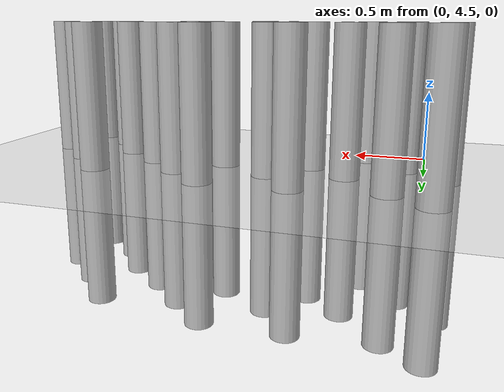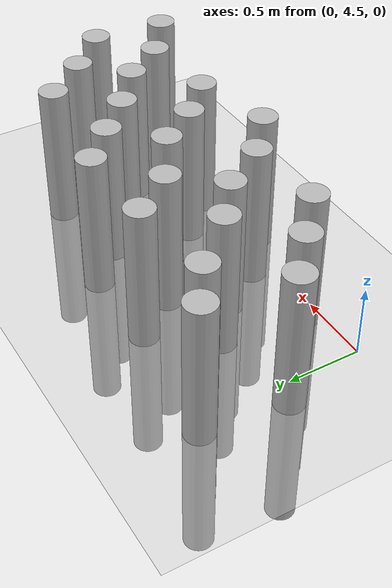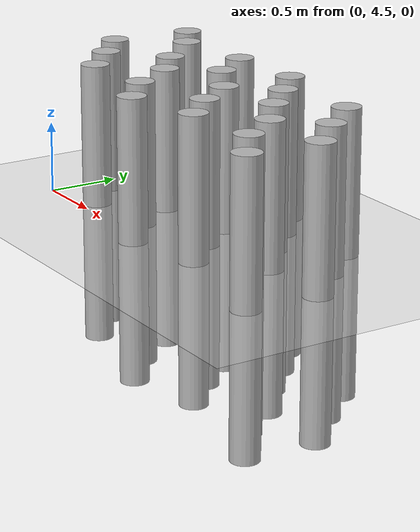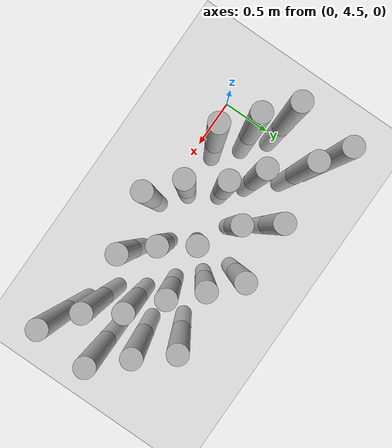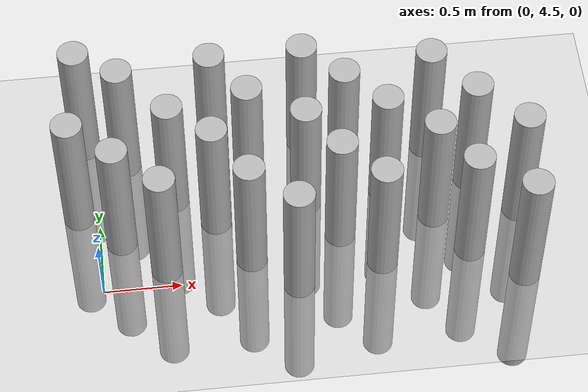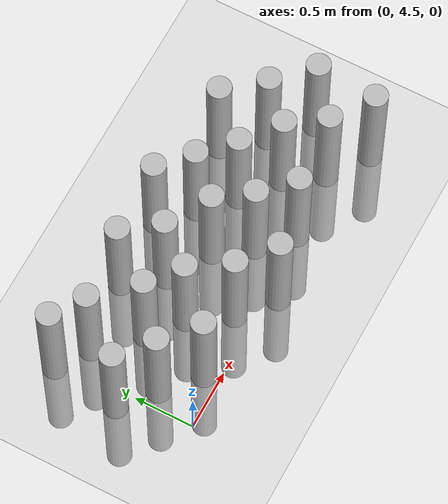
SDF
<sdf version="1.7">
 <world name="farmland_world">
  <model name="ground_plane">
   <static>1</static>
   <link name="link">
    <collision name="collision">
     <geometry><plane><normal>0 0 1</normal><size>40.0 40.0</size></plane></geometry>
     <surface><friction><ode><mu>100</mu><mu2>50</mu2></ode></friction></surface>
    </collision>
    <visual name="visual">
     <cast_shadows>0</cast_shadows>
     <geometry><plane><normal>0 0 1</normal><size>40.0 40.0</size></plane></geometry>
     <material>
      <script><uri>file://media/materials/scripts/gazebo.material</uri><name>Gazebo/Grey</name></script>
     </material>
    </visual>
   </link>
  </model>
  <model name="tree_2_18">
   <static>1</static>
   <link name="link">
    <collision name="collision">
     <geometry><cylinder><radius>0.1</radius><length>2.0</length></cylinder></geometry>
     <surface><friction><ode><mu>100</mu><mu2>50</mu2></ode></friction></surface>
    </collision>
    <visual name="visual">
     <geometry><cylinder><radius>0.1</radius><length>2.0</length></cylinder></geometry>
    </visual>
   </link>
   <pose>0.41248532989156667 4.628214579799276 0 0 0 0</pose>
  </model>
  <model name="tree_2_19">
   <static>1</static>
   <link name="link">
    <collision name="collision">
     <geometry><cylinder><radius>0.1</radius><length>2.0</length></cylinder></geometry>
     <surface><friction><ode><mu>100</mu><mu2>50</mu2></ode></friction></surface>
    </collision>
    <visual name="visual">
     <geometry><cylinder><radius>0.1</radius><length>2.0</length></cylinder></geometry>
    </visual>
   </link>
   <pose>0.13587846698039704 4.872984788598255 0 0 0 0</pose>
  </model>
  <model name="tree_2_20">
   <static>1</static>
   <link name="link">
    <collision name="collision">
     <geometry><cylinder><radius>0.1</radius><length>2.0</length></cylinder></geometry>
     <surface><friction><ode><mu>100</mu><mu2>50</mu2></ode></friction></surface>
    </collision>
    <visual name="visual">
     <geometry><cylinder><radius>0.1</radius><length>2.0</length></cylinder></geometry>
    </visual>
   </link>
   <pose>-0.13115612335666182 5.098844707070619 0 0 0 0</pose>
  </model>
  <model name="tree_2_53">
   <static>1</static>
   <link name="link">
    <collision name="collision">
     <geometry><cylinder><radius>0.1</radius><length>2.0</length></cylinder></geometry>
     <surface><friction><ode><mu>100</mu><mu2>50</mu2></ode></friction></surface>
    </collision>
    <visual name="visual">
     <geometry><cylinder><radius>0.1</radius><length>2.0</length></cylinder></geometry>
    </visual>
   </link>
   <pose>2.703746257933597 4.361621368254272 0 0 0 0</pose>
  </model>
  <model name="tree_2_54">
   <static>1</static>
   <link name="link">
    <collision name="collision">
     <geometry><cylinder><radius>0.1</radius><length>2.0</length></cylinder></geometry>
     <surface><friction><ode><mu>100</mu><mu2>50</mu2></ode></friction></surface>
    </collision>
    <visual name="visual">
     <geometry><cylinder><radius>0.1</radius><length>2.0</length></cylinder></geometry>
    </visual>
   </link>
   <pose>2.380185632472757 4.589056822054767 0 0 0 0</pose>
  </model>
  <model name="tree_2_55">
   <static>1</static>
   <link name="link">
    <collision name="collision">
     <geometry><cylinder><radius>0.1</radius><length>2.0</length></cylinder></geometry>
     <surface><friction><ode><mu>100</mu><mu2>50</mu2></ode></friction></surface>
    </collision>
    <visual name="visual">
     <geometry><cylinder><radius>0.1</radius><length>2.0</length></cylinder></geometry>
    </visual>
   </link>
   <pose>2.1803860069834204 4.878837688304175 0 0 0 0</pose>
  </model>
  <model name="tree_2_56">
   <static>1</static>
   <link name="link">
    <collision name="collision">
     <geometry><cylinder><radius>0.1</radius><length>2.0</length></cylinder></geometry>
     <surface><friction><ode><mu>100</mu><mu2>50</mu2></ode></friction></surface>
    </collision>
    <visual name="visual">
     <geometry><cylinder><radius>0.1</radius><length>2.0</length></cylinder></geometry>
    </visual>
   </link>
   <pose>1.882328495023229 5.1079370803841675 0 0 0 0</pose>
  </model>
  <model name="tree_2_57">
   <static>1</static>
   <link name="link">
    <collision name="collision">
     <geometry><cylinder><radius>0.1</radius><length>2.0</length></cylinder></geometry>
     <surface><friction><ode><mu>100</mu><mu2>50</mu2></ode></friction></surface>
    </collision>
    <visual name="visual">
     <geometry><cylinder><radius>0.1</radius><length>2.0</length></cylinder></geometry>
    </visual>
   </link>
   <pose>1.6344696452331453 5.3488730039152035 0 0 0 0</pose>
  </model>
  <model name="tree_2_58">
   <static>1</static>
   <link name="link">
    <collision name="collision">
     <geometry><cylinder><radius>0.1</radius><length>2.0</length></cylinder></geometry>
     <surface><friction><ode><mu>100</mu><mu2>50</mu2></ode></friction></surface>
    </collision>
    <visual name="visual">
     <geometry><cylinder><radius>0.1</radius><length>2.0</length></cylinder></geometry>
    </visual>
   </link>
   <pose>1.385319783040153 5.57650115219264 0 0 0 0</pose>
  </model>
  <model name="tree_2_256">
   <static>1</static>
   <link name="link">
    <collision name="collision">
     <geometry><cylinder><radius>0.1</radius><length>2.0</length></cylinder></geometry>
     <surface><friction><ode><mu>100</mu><mu2>50</mu2></ode></friction></surface>
    </collision>
    <visual name="visual">
     <geometry><cylinder><radius>0.1</radius><length>2.0</length></cylinder></geometry>
    </visual>
   </link>
   <pose>1.2502485694793901 4.425275438599659 0 0 0 0</pose>
  </model>
  <model name="tree_2_257">
   <static>1</static>
   <link name="link">
    <collision name="collision">
     <geometry><cylinder><radius>0.1</radius><length>2.0</length></cylinder></geometry>
     <surface><friction><ode><mu>100</mu><mu2>50</mu2></ode></friction></surface>
    </collision>
    <visual name="visual">
     <geometry><cylinder><radius>0.1</radius><length>2.0</length></cylinder></geometry>
    </visual>
   </link>
   <pose>0.9657359071630901 4.656554709959153 0 0 0 0</pose>
  </model>
  <model name="tree_2_258">
   <static>1</static>
   <link name="link">
    <collision name="collision">
     <geometry><cylinder><radius>0.1</radius><length>2.0</length></cylinder></geometry>
     <surface><friction><ode><mu>100</mu><mu2>50</mu2></ode></friction></surface>
    </collision>
    <visual name="visual">
     <geometry><cylinder><radius>0.1</radius><length>2.0</length></cylinder></geometry>
    </visual>
   </link>
   <pose>0.7600763412699171 4.973380934377313 0 0 0 0</pose>
  </model>
  <model name="tree_2_259">
   <static>1</static>
   <link name="link">
    <collision name="collision">
     <geometry><cylinder><radius>0.1</radius><length>2.0</length></cylinder></geometry>
     <surface><friction><ode><mu>100</mu><mu2>50</mu2></ode></friction></surface>
    </collision>
    <visual name="visual">
     <geometry><cylinder><radius>0.1</radius><length>2.0</length></cylinder></geometry>
    </visual>
   </link>
   <pose>0.49713442138267977 5.178835836120132 0 0 0 0</pose>
  </model>
  <model name="tree_2_260">
   <static>1</static>
   <link name="link">
    <collision name="collision">
     <geometry><cylinder><radius>0.1</radius><length>2.0</length></cylinder></geometry>
     <surface><friction><ode><mu>100</mu><mu2>50</mu2></ode></friction></surface>
    </collision>
    <visual name="visual">
     <geometry><cylinder><radius>0.1</radius><length>2.0</length></cylinder></geometry>
    </visual>
   </link>
   <pose>0.19952843949772656 5.497864519464539 0 0 0 0</pose>
  </model>
  <model name="tree_2_261">
   <static>1</static>
   <link name="link">
    <collision name="collision">
     <geometry><cylinder><radius>0.1</radius><length>2.0</length></cylinder></geometry>
     <surface><friction><ode><mu>100</mu><mu2>50</mu2></ode></friction></surface>
    </collision>
    <visual name="visual">
     <geometry><cylinder><radius>0.1</radius><length>2.0</length></cylinder></geometry>
    </visual>
   </link>
   <pose>-0.0653679359005899 5.6690731131272685 0 0 0 0</pose>
  </model>
  <model name="tree_2_295">
   <static>1</static>
   <link name="link">
    <collision name="collision">
     <geometry><cylinder><radius>0.1</radius><length>2.0</length></cylinder></geometry>
     <surface><friction><ode><mu>100</mu><mu2>50</mu2></ode></friction></surface>
    </collision>
    <visual name="visual">
     <geometry><cylinder><radius>0.1</radius><length>2.0</length></cylinder></geometry>
    </visual>
   </link>
   <pose>1.803389292869613 4.550593265067 0 0 0 0</pose>
  </model>
  <model name="tree_2_296">
   <static>1</static>
   <link name="link">
    <collision name="collision">
     <geometry><cylinder><radius>0.1</radius><length>2.0</length></cylinder></geometry>
     <surface><friction><ode><mu>100</mu><mu2>50</mu2></ode></friction></surface>
    </collision>
    <visual name="visual">
     <geometry><cylinder><radius>0.1</radius><length>2.0</length></cylinder></geometry>
    </visual>
   </link>
   <pose>1.5562031640797487 4.791034520786957 0 0 0 0</pose>
  </model>
  <model name="tree_2_297">
   <static>1</static>
   <link name="link">
    <collision name="collision">
     <geometry><cylinder><radius>0.1</radius><length>2.0</length></cylinder></geometry>
     <surface><friction><ode><mu>100</mu><mu2>50</mu2></ode></friction></surface>
    </collision>
    <visual name="visual">
     <geometry><cylinder><radius>0.1</radius><length>2.0</length></cylinder></geometry>
    </visual>
   </link>
   <pose>1.3598773652543557 5.065997389579209 0 0 0 0</pose>
  </model>
  <model name="tree_2_298">
   <static>1</static>
   <link name="link">
    <collision name="collision">
     <geometry><cylinder><radius>0.1</radius><length>2.0</length></cylinder></geometry>
     <surface><friction><ode><mu>100</mu><mu2>50</mu2></ode></friction></surface>
    </collision>
    <visual name="visual">
     <geometry><cylinder><radius>0.1</radius><length>2.0</length></cylinder></geometry>
    </visual>
   </link>
   <pose>1.0060241516510273 5.275577521256772 0 0 0 0</pose>
  </model>
  <model name="tree_2_299">
   <static>1</static>
   <link name="link">
    <collision name="collision">
     <geometry><cylinder><radius>0.1</radius><length>2.0</length></cylinder></geometry>
     <surface><friction><ode><mu>100</mu><mu2>50</mu2></ode></friction></surface>
    </collision>
    <visual name="visual">
     <geometry><cylinder><radius>0.1</radius><length>2.0</length></cylinder></geometry>
    </visual>
   </link>
   <pose>0.791304231414037 5.562431337641436 0 0 0 0</pose>
  </model>
  <model name="tree_2_334">
   <static>1</static>
   <link name="link">
    <collision name="collision">
     <geometry><cylinder><radius>0.1</radius><length>2.0</length></cylinder></geometry>
     <surface><friction><ode><mu>100</mu><mu2>50</mu2></ode></friction></surface>
    </collision>
    <visual name="visual">
     <geometry><cylinder><radius>0.1</radius><length>2.0</length></cylinder></geometry>
    </visual>
   </link>
   <pose>2.7383190179800576 4.870550208377051 0 0 0 0</pose>
  </model>
  <model name="tree_2_335">
   <static>1</static>
   <link name="link">
    <collision name="collision">
     <geometry><cylinder><radius>0.1</radius><length>2.0</length></cylinder></geometry>
     <surface><friction><ode><mu>100</mu><mu2>50</mu2></ode></friction></surface>
    </collision>
    <visual name="visual">
     <geometry><cylinder><radius>0.1</radius><length>2.0</length></cylinder></geometry>
    </visual>
   </link>
   <pose>2.4550782050919597 5.150044682879106 0 0 0 0</pose>
  </model>
  <model name="tree_2_336">
   <static>1</static>
   <link name="link">
    <collision name="collision">
     <geometry><cylinder><radius>0.1</radius><length>2.0</length></cylinder></geometry>
     <surface><friction><ode><mu>100</mu><mu2>50</mu2></ode></friction></surface>
    </collision>
    <visual name="visual">
     <geometry><cylinder><radius>0.1</radius><length>2.0</length></cylinder></geometry>
    </visual>
   </link>
   <pose>2.203534390721183 5.449524991727156 0 0 0 0</pose>
  </model>
 </world>
</sdf>
